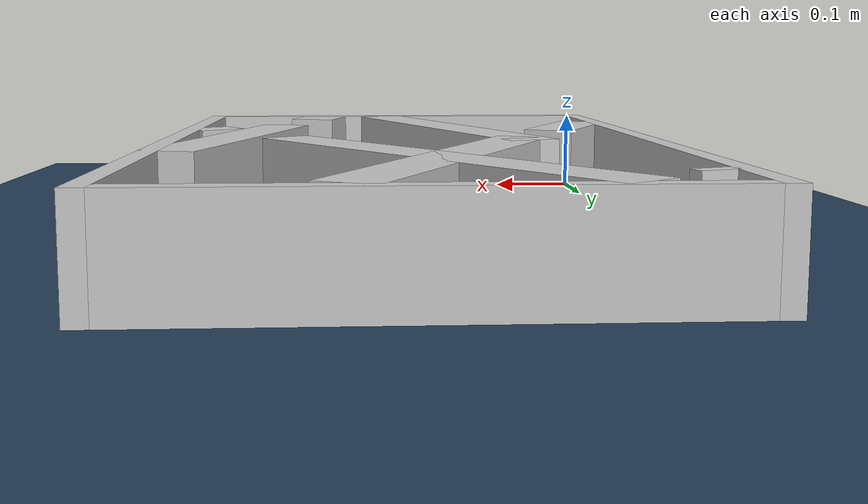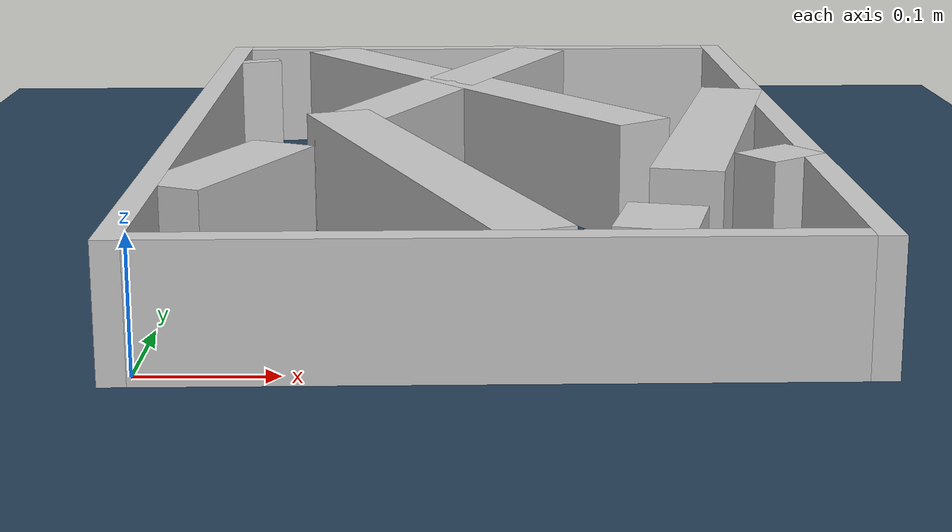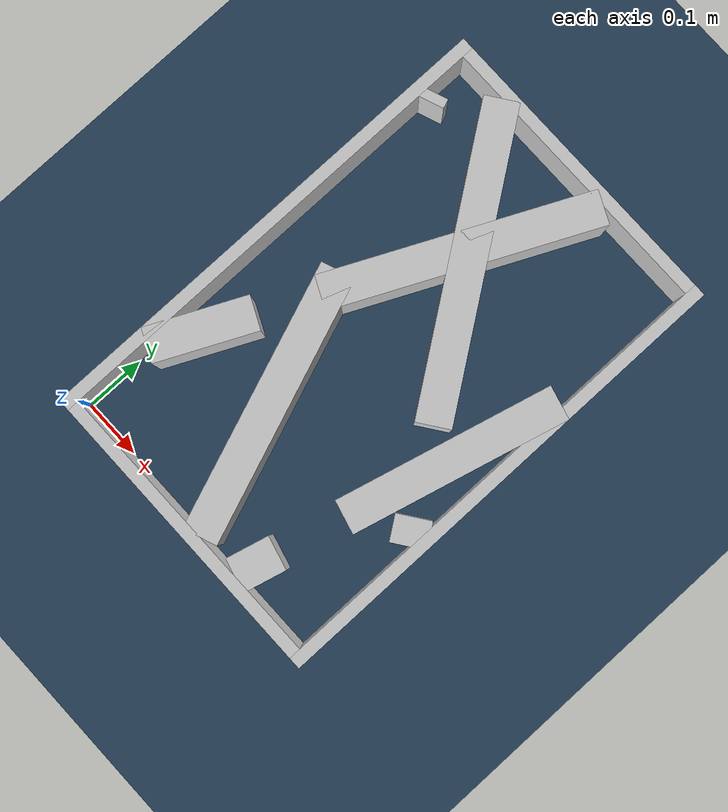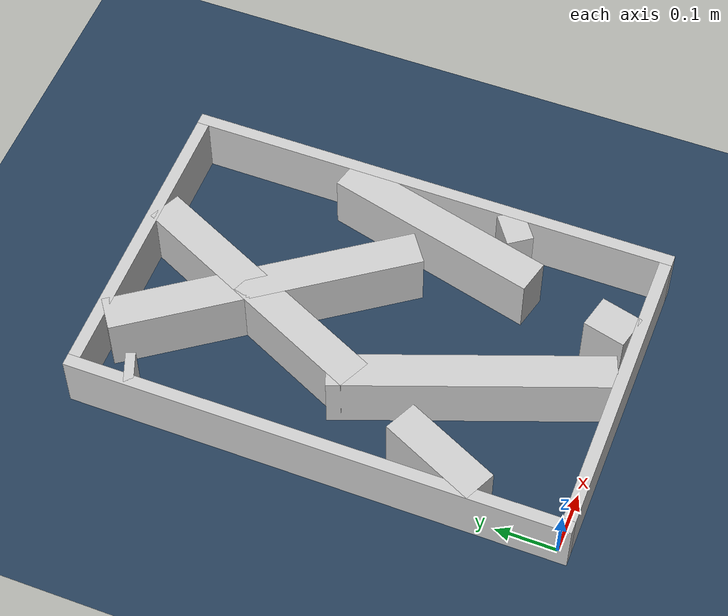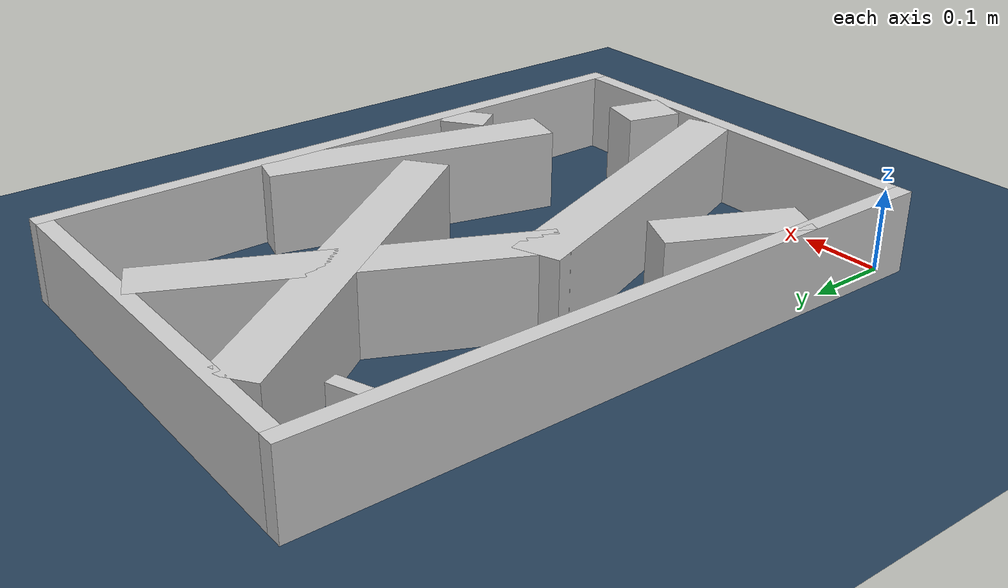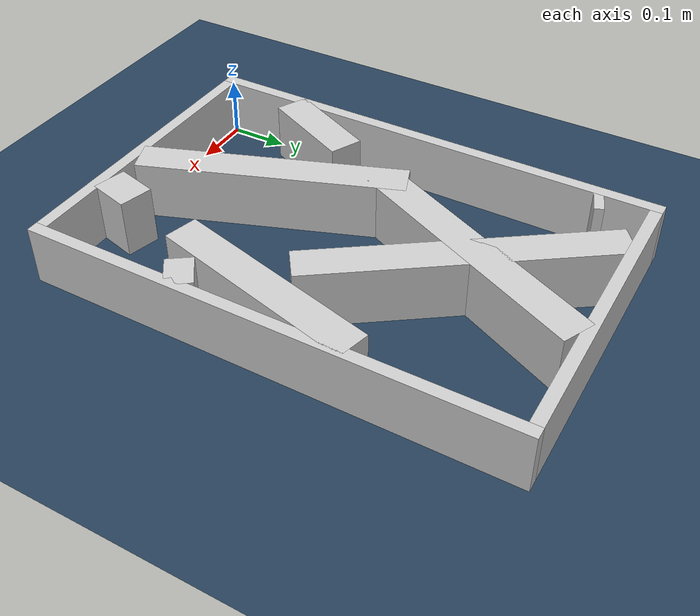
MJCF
<?xml version="1.0" ?>
<mujoco model="generated_real_template">
  <compiler angle="degree"/>
  <option timestep="0.002" integrator="implicitfast" iterations="100" cone="elliptic"/>
  <default>
    <geom density="1"/>
  </default>
  <asset>
    <texture builtin="gradient" height="3072" rgb1="0.3 0.5 0.7" rgb2="0 0 0" type="skybox" width="512"/>
    <texture builtin="checker" height="300" mark="edge" markrgb="0.8 0.8 0.8" name="groundplane" rgb1="0.2 0.3 0.4" rgb2="0.1 0.2 0.3" type="2d" width="300"/>
    <material name="groundplane" reflectance="0.2" texrepeat="5 5" texture="groundplane" texuniform="true"/>
  </asset>
  <worldbody>
    <light dir="0 0 -1" directional="true" pos="0 0 1.5"/>
    <geom name="floor" type="plane" condim="4" friction="0.5 0.005 0.001" material="groundplane" size="0 0 0.05"/>
    <body name="walls">
      <geom name="wall_boundary_left" type="box" condim="4" friction="1.0 0.005 0.0001" rgba="0.8 0.8 0.8 1" pos="-0.010000 0.387500 0.050000" euler="0 0 0.000000" size="0.010000 0.407500 0.050000"/>
      <geom name="wall_boundary_right" type="box" condim="4" friction="1.0 0.005 0.0001" rgba="0.8 0.8 0.8 1" pos="0.500000 0.387500 0.050000" euler="0 0 0.000000" size="0.010000 0.407500 0.050000"/>
      <geom name="wall_boundary_bottom" type="box" condim="4" friction="1.0 0.005 0.0001" rgba="0.8 0.8 0.8 1" pos="0.245000 -0.010000 0.050000" euler="0 0 0.000000" size="0.245000 0.010000 0.050000"/>
      <geom name="wall_boundary_top" type="box" condim="4" friction="1.0 0.005 0.0001" rgba="0.8 0.8 0.8 1" pos="0.245000 0.785000 0.050000" euler="0 0 0.000000" size="0.245000 0.010000 0.050000"/>
      <geom name="wall_inner_1_1" type="box" condim="4" friction="1.0 0.005 0.0001" rgba="0.8 0.8 0.8 1" pos="0.437291 0.350922 0.050000" euler="0 0 -104.436972" size="0.180926 0.028500 0.050000"/>
      <geom name="wall_inner_1_2" type="box" condim="4" friction="1.0 0.005 0.0001" rgba="0.8 0.8 0.8 1" pos="0.355802 0.034390 0.050000" euler="0 0 -104.436972" size="0.035511 0.028500 0.050000"/>
      <geom name="wall_inner_2_1" type="box" condim="4" friction="1.0 0.005 0.0001" rgba="0.8 0.8 0.8 1" pos="0.216668 0.573985 0.050000" euler="0 0 -115.369662" size="0.222469 0.028500 0.050000"/>
      <geom name="wall_inner_2_2" type="box" condim="4" friction="1.0 0.005 0.0001" rgba="0.8 0.8 0.8 1" pos="0.042062 0.205762 0.050000" euler="0 0 -115.369662" size="0.084745 0.028500 0.050000"/>
      <geom name="wall_inner_3_1" type="box" condim="4" friction="1.0 0.005 0.0001" rgba="0.8 0.8 0.8 1" pos="0.474046 0.234741 0.050000" euler="0 0 125.597021" size="0.021954 0.028500 0.050000"/>
      <geom name="wall_inner_3_2" type="box" condim="4" friction="1.0 0.005 0.0001" rgba="0.8 0.8 0.8 1" pos="0.234421 0.569482 0.050000" euler="0 0 125.597021" size="0.252749 0.028500 0.050000"/>
      <geom name="wall_inner_4_1" type="box" condim="4" friction="1.0 0.005 0.0001" rgba="0.8 0.8 0.8 1" pos="0.192353 0.208379 0.050000" euler="0 0 110.532787" size="0.222515 0.028500 0.050000"/>
      <geom name="wall_inner_4_2" type="box" condim="4" friction="1.0 0.005 0.0001" rgba="0.8 0.8 0.8 1" pos="0.009434 0.696765 0.050000" euler="0 0 110.532787" size="0.007822 0.028500 0.050000"/>
    </body>
  </worldbody>
</mujoco>
